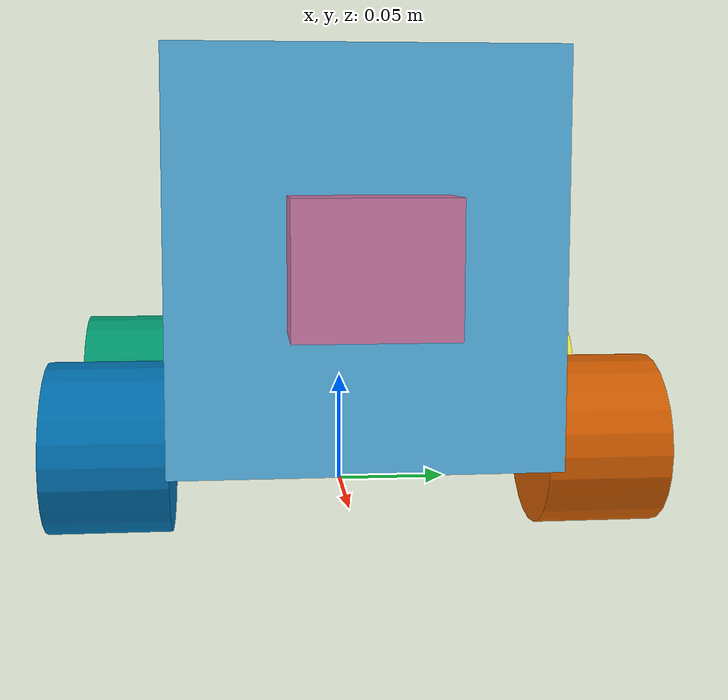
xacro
<?xml version="1.0" encoding="UTF-8"?>
<!-- This file defines the robot geometry and joints -->

<robot name="earthrover_vla" xmlns:xacro="http://www.ros.org/wiki/xacro">

    <!-- Geometry and Constants-->
    <xacro:property name="pi_const" value="3.14159265" />

    <!-- Body Dimensions -->
    <xacro:property name="a" value="0.250"/> <!-- Uses default gazebo units, m)-->
    <xacro:property name="b" value="0.160"/>
    <xacro:property name="c" value="0.150"/>

    <!-- Wheel Dimensions -->
    <!-- Wheel radius-->
    <xacro:property name="r" value="0.035" />
    <!-- wheel width -->
    <xacro:property name="d" value="0.05" />

    <xacro:property name="s1" value="${b/2+r}"/>
    <xacro:property name="s2" value="${2*r}"/>
    <xacro:property name="s3" value="${2*r}"/>
    <xacro:property name="s4" value="${c/2 + d/2}"/>

    <!-- Mass and Inertia -->
    <!-- Material Densities-->
    <!-- Body Material Density -->
    <xacro:property name="d1" value="2710.0"/>
    <!-- Wheel Material density-->
    <xacro:property name="d2" value="2710.0" />

    <!-- Robot body mass, wheel mass -->
    <!-- body-->
    <xacro:property name="m1" value="${d1*a*b*c}" />
    <!-- wheel -->
    <xacro:property name="m2" value="${d2*pi_const*r*r*d}" />

    <!-- Moments of intertia of the robot body-->
    <xacro:property name="Ix_body" value="${(1/12)*m1*(b*b+c*c) }" />
    <xacro:property name="Iy_body" value="${(1/12)*m1*(b*b+a*a) }" />
    <xacro:property name="Iz_body" value="${(1/12)*m1*(a*a+c*c) }"/>

    <!-- Moments of intertia of the wheel-->
    <xacro:property name="I_wheel" value="${0.5*m2*r*r}" />
    <xacro:property name="Iz_wheel" value="${(1.0/ 12.0)*m2*(3.0*r*r+d*d) }"/>

    <!-- Macro for the inertial section of the body -->
    <xacro:macro name="inertia_body">
        <inertial>
            <!-- Displacement and orientation of COM of the frame of link WRT to parent frame-->
             <origin rpy="0 0 0" xyz="0 0 ${s1}" /> <!-- roll, pitch and yaw + xyz disiplacement between parent frame to COM-->
             <mass value="${m1}"/>
             <inertia ixx="${Ix_body}" ixy="0.0" ixz="0.0" iyy="${Iy_body}" iyz="0.0" izz="${Iz_body}"/>
        </inertial>
    </xacro:macro>

    <!-- Macro for the inertial section of the wheel -->
     <xacro:macro name="inertia_wheel">
        <inertial>
            <origin rpy="1.570795 0.0 0.0" xyz="0.0 0.0 0.0"/>
            <mass value="${m2}"/>
            <inertia ixx="${I_wheel}" ixy="0.0" ixz="0.0" iyy="${I_wheel}" iyz="0.0" izz="${Iz_wheel}"/>
        </inertial>
     </xacro:macro>

        <!-- Camera Dimensions and Properties -->
    <!-- Dimensions -->
    <xacro:property name="cam_y" value="0.06" />
    <xacro:property name="cam_z" value="0.05" />
    <xacro:property name="cam_x" value="0.03" />
    <!-- Mass-->
    <xacro:property name="cam_mass" value="${cam_y*cam_z*cam_x*d1}" />

    <!-- Moments of inertia -->
    <xacro:property name="Ix_cam" value="${(1/12)*cam_mass*(cam_y*cam_y+cam_z*cam_z)}" />
    <xacro:property name="Iy_cam" value="${(1/12)*cam_mass*(cam_x*cam_x+cam_z*cam_z)}" />
    <xacro:property name="Iz_cam" value="${(1/12)*cam_mass*(cam_x*cam_x+cam_y*cam_y)}" />

    <!-- Macro for inertia -->
    <xacro:macro name="inertia_cam">
        <inertial>
            <origin xyz="0.0 0.0 0.0" rpy="0.0 0.0 0.0"/>
            <mass value="${cam_mass}"/>
            <inertia ixx="${Ix_cam}" ixy="0.0" ixz="0.0" iyy="${Iy_cam}" iyz="0.0" izz="${Iz_cam}"/>
        </inertial>
    </xacro:macro>

    <!-- Define Links and Joints-->

    <!-- Base Footprint (fictitious link for fixing coordinate systems to the ground-->
    <link name="base_footprint"> </link>
    <joint name="body_link_joint" type="fixed">
        <parent link="base_footprint"/>
        <child link="body_link"/>
    </joint>

    <!-- Body link-->
    <link name="body_link">
        <visual>
            <geometry>
                <box size="${a} ${c} ${b}"/>
            </geometry>
        <origin xyz="0.0 0.0 ${s1}" rpy="0.0 0.0 0.0"/>
        </visual>

        <collision>
            <geometry>
                <box size="${a} ${c} ${b}"/>
            </geometry>
            <origin xyz="0.0 0.0 ${s1}" rpy="0.0 0.0 0.0"/>
        </collision>

        <xacro:inertia_body />
    </link>

    <!-- Back right wheel of robot and joint -->
    <joint name="wheel1_joint" type="continuous">
        <origin xyz="${-s2} ${-s4} ${r}" rpy="0.0 0.0 0.0"/> <!-- Defined wrt to the frame of the parent link-->
        <parent link="body_link"/>
        <child link="wheel1_link"/>
        <axis xyz="0 1 0"/>
        <limit effort="50000.0" velocity="10.0"/> <!-- Max torque and velocity -->
        <dynamics damping="1.0" friction="1.0"/>
    </joint>

    <link name="wheel1_link">
        <visual>
            <origin xyz="0.0 0.0 0.0" rpy="1.570795 0.0 0.0"/> <!-- Relative to the frame attached to the wheel1_joint-->
            <geometry>
                <cylinder radius="${r}" length="${d}"/>
            </geometry>
        </visual>

        <collision>
            <origin xyz="0.0 0.0 0.0" rpy="1.570795 0.0 0.0"/>
            <geometry>
                <cylinder radius="${r}" length="${d}"/>
            </geometry>
        </collision>

        <xacro:inertia_wheel/>

    </link>

    <!-- Back left wheel of robot and joint-->
     <joint name="wheel2_joint" type="continuous">
        <origin xyz="${-s2} ${s4} ${r}" rpy="0.0 0.0 0.0"/>
        <parent link="body_link"/>
        <child link="wheel2_link"/>
        <axis xyz="0.0 1 0.0"/>
        <limit effort="50000.0" velocity="10.0"/>
        <dynamics damping="1.0" friction="1.0"/>
     </joint>

    <link name="wheel2_link">
        <visual>
            <origin xyz="0.0 0.0 0.0" rpy="1.570795 0.0 0.0"/> <!-- Relative to the frame attached to the wheel1_joint-->
            <geometry>
                <cylinder radius="${r}" length="${d}"/>
            </geometry>
        </visual>

        <collision>
            <origin xyz="0.0 0.0 0.0" rpy="1.570795 0.0 0.0"/>
            <geometry>
                <cylinder radius="${r}" length="${d}"/>
            </geometry>
        </collision>

        <xacro:inertia_wheel/>

    </link>

    <!-- Front right wheel of robot and joint -->
    <joint name="wheel3_joint" type="continuous">
        <origin xyz="${s2} ${-s4} ${r}" rpy="0.0 0.0 0.0"/> <!-- Defined wrt to the frame of the parent link-->
        <parent link="body_link"/>
        <child link="wheel3_link"/>
        <axis xyz="0 1 0"/>
        <limit effort="50000.0" velocity="10.0"/> <!-- Max torque and velocity -->
        <dynamics damping="1.0" friction="1.0"/>
    </joint>

    <link name="wheel3_link">
        <visual>
            <origin xyz="0.0 0.0 0.0" rpy="1.570795 0.0 0.0"/> <!-- Relative to the frame attached to the wheel1_joint-->
            <geometry>
                <cylinder radius="${r}" length="${d}"/>
            </geometry>
        </visual>

        <collision>
            <origin xyz="0.0 0.0 0.0" rpy="1.570795 0.0 0.0"/>
            <geometry>
                <cylinder radius="${r}" length="${d}"/>
            </geometry>
        </collision>

        <xacro:inertia_wheel/>

    </link>

    <!-- Front left wheel of robot and joint-->
     <joint name="wheel4_joint" type="continuous">
        <origin xyz="${s2} ${s4} ${r}" rpy="0.0 0.0 0.0"/>
        <parent link="body_link"/>
        <child link="wheel4_link"/>
        <axis xyz="0.0 1 0.0"/>
        <limit effort="50000.0" velocity="10.0"/>
        <dynamics damping="1.0" friction="1.0"/>
     </joint>

    <link name="wheel4_link">
        <visual>
            <origin xyz="0.0 0.0 0.0" rpy="1.570795 0.0 0.0"/> <!-- Relative to the frame attached to the wheel1_joint-->
            <geometry>
                <cylinder radius="${r}" length="${d}"/>
            </geometry>
        </visual>

        <collision>
            <origin xyz="0.0 0.0 0.0" rpy="1.570795 0.0 0.0"/>
            <geometry>
                <cylinder radius="${r}" length="${d}"/>
            </geometry>
        </collision>

        <xacro:inertia_wheel/>

    </link>

    <!-- Camera link and joint -->
     <joint name="cam_joint" type="fixed">
        <origin xyz="${a/2} 0.0 ${s1}" rpy="0.0 0.0 0.0"/>
        <parent link="body_link"/>
        <child link="cam_link"/>
     </joint>

     <link name="cam_link">
        <visual>
            <geometry>
                <box size="${cam_x} ${cam_y} ${cam_z}"/>
            </geometry>
            <origin xyz="${cam_x/2} 0.0 0.0" rpy="0.0 0.0 0.0"/>
        </visual>

        <collision>
           <geometry>
                <box size="${cam_x} ${cam_y} ${cam_z}"/>
            </geometry>
            <origin xyz="${cam_x/2} 0.0 0.0" rpy="0.0 0.0 0.0"/>
        </collision>

        <xacro:inertia_cam/>

     </link>

          <joint name="cam_optical_joint" type="fixed">
        <!-- Rotate coordinate system to allow optical coordinates -->
        <origin xyz="0.0 0.0 0.0" rpy="${-pi_const/2} 0.0 ${-pi_const/2}"/>
        <parent link="cam_link"/>
        <child link="cam_link_optical"/>
     </joint>

     <link name="cam_link_optical"></link>

</robot>
